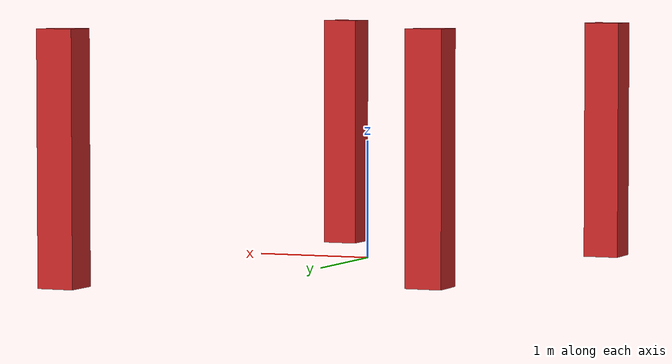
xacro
<?xml version="1.0" ?>
<robot name="obstacles" xmlns:xacro="http://www.ros.org/wiki/xacro">
  <xacro:include filename="$(find locally_reactive_controller_evaluation)/models/single_obstacle.urdf.xacro"/>

  <xacro:property name="parent" value="world" />
  <link name="${parent}"/>

  <xacro:obstacle name="obstacle1" parent="${parent}">
	  <origin xyz="-1.4 2.1 0.001" rpy="0.0 0.0 ${pi/180*0}" />
  </xacro:obstacle>

  <xacro:obstacle name="obstacle2" parent="${parent}">
	  <origin xyz="-1.8 -1.0 0.001" rpy="0.0 0.0 ${pi/180*0}" />
  </xacro:obstacle>

  <xacro:obstacle name="obstacle3" parent="${parent}">
	  <origin xyz="0.8 -1.4 0.001" rpy="0.0 0.0 ${pi/180*0}" />
  </xacro:obstacle>

  <xacro:obstacle name="obstacle4" parent="${parent}">
	  <origin xyz="1.2 3.2 0.001" rpy="0.0 0.0 ${pi/180*0}" />
  </xacro:obstacle>

</robot>

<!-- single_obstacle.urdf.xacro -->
<robot xmlns:xacro="http://www.ros.org/wiki/xacro">

   <xacro:macro name="obstacle" params="name:=obstacle1
                                        parent:=fixed
                                        height:=2.0
                                        width=0.3
                                        length=0.3
                                        *origin">

    <joint name="${name}_joint" type="fixed">
      <parent link="${parent}"/>
      <child  link="${name}_link"/>
      <xacro:insert_block name="origin" />
    </joint>

    <link name="${name}_link">
      <inertial>
        <mass value="10"/>
        <origin xyz="0 0 0"/>
        <inertia ixx="1.0" ixy="0.0" ixz="0.0" iyy="0.1" iyz="0.0" izz="0.1"/>
      </inertial>

      <visual>
        <origin rpy="0 0 0" xyz="0 0 ${0.5*height}"/>
        <geometry>
          <box size="${width} ${length} ${height}"/>
        </geometry>
      </visual>

      <collision>
        <origin rpy="0 0 0" xyz="0 0 ${0.5*height}"/>
        <geometry>
          <box size="${width} ${length} ${height}"/>
        </geometry>
      </collision>

    </link>

    <gazebo reference="${name}_link">
      <material>Gazebo/Red</material>
      <gravity>0</gravity>

      <sensor name="${name}_sensor" type="contact">
        <always_on>true</always_on>
        <update_rate>30</update_rate>
        <contact>
          <collision>${name}_link_collision</collision> <!-- This should be the same name as the collision layer above-->
        </contact>
        <plugin name="bumper_plugin" filename="libgazebo_ros_bumper.so">
          <bumperTopicName>/gazebo/${name}_link_collisions</bumperTopicName>
          <frameName>odom</frameName>
        </plugin>
      </sensor>

    </gazebo>

  </xacro:macro>
</robot>
